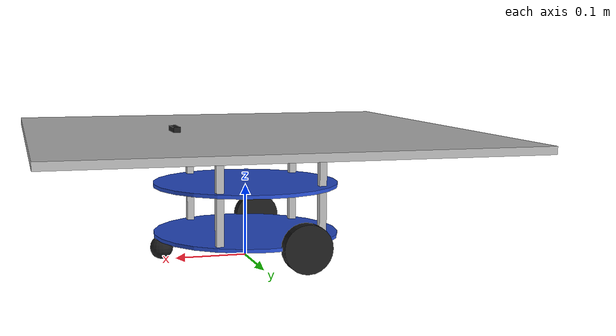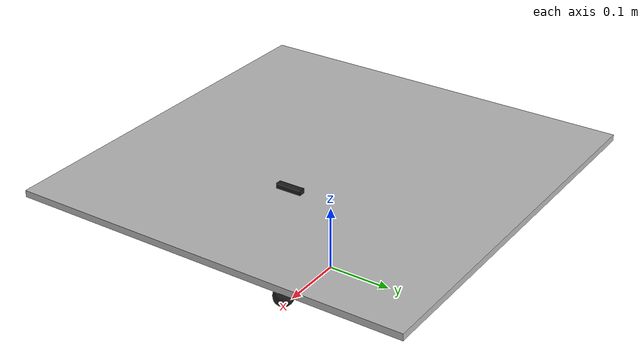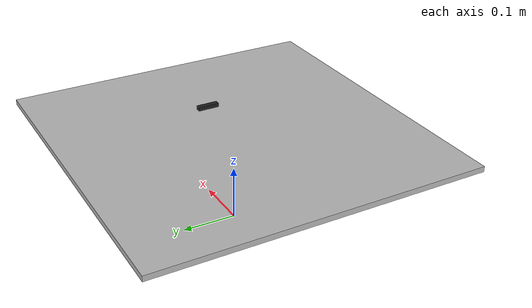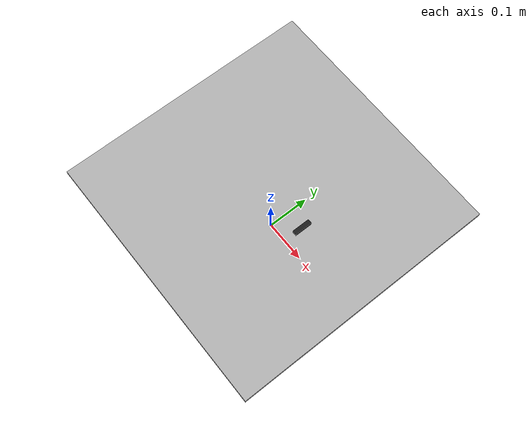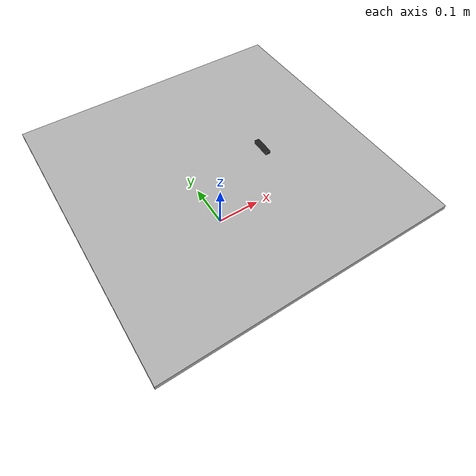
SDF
<sdf version='1.6'>
  <model name='mrobot'>
    <link name='base_footprint'>
      <pose frame=''>0 0 0 0 -0 0</pose>
      <inertial>
        <pose frame=''>0.013545 0 0.078721 0 -0 0</pose>
        <mass>0.818</mass>
        <inertia>
          <ixx>0.0171712</ixx>
          <ixy>7.34289e-22</ixy>
          <ixz>-0.00106581</ixz>
          <iyy>0.0181523</iyy>
          <iyz>2.47856e-21</iyz>
          <izz>0.0178163</izz>
        </inertia>
      </inertial>
      <collision name='base_footprint_fixed_joint_lump__base_link_collision'>
        <pose frame=''>0 0 0.033 0 -0 0</pose>
        <geometry>
          <cylinder>
            <length>0.005</length>
            <radius>0.13</radius>
          </cylinder>
        </geometry>
        <surface>
          <contact>
            <ode/>
          </contact>
          <friction>
            <ode/>
          </friction>
        </surface>
      </collision>
      <collision name='base_footprint_fixed_joint_lump__front_caster_link_collision_1'>
        <pose frame=''>0.12 0 0.017 0 -0 0</pose>
        <geometry>
          <sphere>
            <radius>0.016</radius>
          </sphere>
        </geometry>
        <surface>
          <contact>
            <ode/>
          </contact>
          <friction>
            <ode/>
          </friction>
        </surface>
      </collision>
      <collision name='base_footprint_fixed_joint_lump__plate_1_link_collision_2'>
        <pose frame=''>0 0 0.103 0 -0 0</pose>
        <geometry>
          <cylinder>
            <length>0.005</length>
            <radius>0.13</radius>
          </cylinder>
        </geometry>
        <surface>
          <contact>
            <ode/>
          </contact>
          <friction>
            <ode/>
          </friction>
        </surface>
      </collision>
      <collision name='base_footprint_fixed_joint_lump__plate_2_link_collision_3'>
        <pose frame=''>0 0 0.173 0 -0 0</pose>
        <geometry>
          <box>
            <size>0.6 0.6 .01</size>
          </box>
        </geometry>
        <surface>
          <contact>
            <ode/>
          </contact>
          <friction>
            <ode/>
          </friction>
        </surface>
      </collision>
      <collision name='base_footprint_fixed_joint_lump__camera_link_collision_4'>
        <pose frame=''>0.1 0 0.193 0 -0 0</pose>
        <geometry>
          <box>
            <size>0.01 0.04 0.04</size>
          </box>
        </geometry>
        <surface>
          <contact>
            <ode/>
          </contact>
          <friction>
            <ode/>
          </friction>
        </surface>
      </collision>
      <collision name='base_footprint_fixed_joint_lump__standoff_2in_1_link_collision_5'>
        <pose frame=''>-0.09 -0.07 0.068 0 -0 0</pose>
        <geometry>
          <box>
            <size>0.01 0.01 0.07</size>
          </box>
        </geometry>
      </collision>
      <collision name='base_footprint_fixed_joint_lump__standoff_2in_5_link_collision_6'>
        <pose frame=''>-0.09 -0.07 0.138 0 -0 0</pose>
        <geometry>
          <box>
            <size>0.01 0.01 0.07</size>
          </box>
        </geometry>
      </collision>
      <collision name='base_footprint_fixed_joint_lump__standoff_2in_2_link_collision_7'>
        <pose frame=''>-0.09 0.07 0.068 0 -0 0</pose>
        <geometry>
          <box>
            <size>0.01 0.01 0.07</size>
          </box>
        </geometry>
      </collision>
      <collision name='base_footprint_fixed_joint_lump__standoff_2in_6_link_collision_8'>
        <pose frame=''>-0.09 0.07 0.138 0 -0 0</pose>
        <geometry>
          <box>
            <size>0.01 0.01 0.07</size>
          </box>
        </geometry>
      </collision>
      <collision name='base_footprint_fixed_joint_lump__standoff_2in_3_link_collision_9'>
        <pose frame=''>0.06 -0.1 0.068 0 -0 0</pose>
        <geometry>
          <box>
            <size>0.01 0.01 0.07</size>
          </box>
        </geometry>
      </collision>
      <collision name='base_footprint_fixed_joint_lump__standoff_2in_7_link_collision_10'>
        <pose frame=''>0.06 -0.1 0.138 0 -0 0</pose>
        <geometry>
          <box>
            <size>0.01 0.01 0.07</size>
          </box>
        </geometry>
      </collision>
      <collision name='base_footprint_fixed_joint_lump__standoff_2in_4_link_collision_11'>
        <pose frame=''>0.06 0.1 0.068 0 -0 0</pose>
        <geometry>
          <box>
            <size>0.01 0.01 0.07</size>
          </box>
        </geometry>
      </collision>
      <collision name='base_footprint_fixed_joint_lump__standoff_2in_8_link_collision_12'>
        <pose frame=''>0.06 0.1 0.138 0 -0 0</pose>
        <geometry>
          <box>
            <size>0.01 0.01 0.07</size>
          </box>
        </geometry>
      </collision>
      <visual name='base_footprint_visual'>
        <pose frame=''>0 0 0 0 -0 0</pose>
        <geometry>
          <box>
            <size>0.001 0.001 0.001</size>
          </box>
        </geometry>
      </visual>
      <visual name='base_footprint_fixed_joint_lump__base_link_visual_1'>
        <pose frame=''>0 0 0.033 0 -0 0</pose>
        <geometry>
          <cylinder>
            <length>0.005</length>
            <radius>0.13</radius>
          </cylinder>
        </geometry>
        <material>
          <script>
            <name>Gazebo/Blue</name>
            <uri>file://media/materials/scripts/gazebo.material</uri>
          </script>
        </material>
      </visual>
      <visual name='base_footprint_fixed_joint_lump__front_caster_link_visual_2'>
        <pose frame=''>0.12 0 0.017 0 -0 0</pose>
        <geometry>
          <sphere>
            <radius>0.016</radius>
          </sphere>
        </geometry>
        <material>
          <script>
            <name>Gazebo/Black</name>
            <uri>file://media/materials/scripts/gazebo.material</uri>
          </script>
        </material>
      </visual>
      <visual name='base_footprint_fixed_joint_lump__plate_1_link_visual_3'>
        <pose frame=''>0 0 0.103 0 -0 0</pose>
        <geometry>
          <cylinder>
            <length>0.005</length>
            <radius>0.13</radius>
          </cylinder>
        </geometry>
        <material>
          <script>
            <name>Gazebo/Blue</name>
            <uri>file://media/materials/scripts/gazebo.material</uri>
          </script>
        </material>
      </visual>
      <visual name='base_footprint_fixed_joint_lump__plate_2_link_visual_4'>
        <pose frame=''>0 0 0.173 0 -0 0</pose>
        <geometry>
          <box>
            <size>0.6 0.6 .01</size>
          </box>
        </geometry>
        <material>
          <script>
            <uri>model://my_landing_pad/materials/scripts</uri>
	          <uri>model://my_landing_pad/materials/textures</uri>
            <name>Cube/my_landing_pad</name>
          </script>
        </material>
      </visual>
      <visual name='base_footprint_fixed_joint_lump__camera_link_visual_5'>
        <pose frame=''>0.1 0 0.18 0 -0 0</pose>
        <geometry>
          <box>
            <size>0.01 0.04 0.01</size>
          </box>
        </geometry>
        <material>
          <script>
            <name>Gazebo/Black</name>
            <uri>file://media/materials/scripts/gazebo.material</uri>
          </script>
        </material>
      </visual>
      <visual name='base_footprint_fixed_joint_lump__standoff_2in_1_link_visual_6'>
        <pose frame=''>-0.09 -0.07 0.068 0 -0 0</pose>
        <geometry>
          <box>
            <size>0.01 0.01 0.07</size>
          </box>
        </geometry>
      </visual>
      <visual name='base_footprint_fixed_joint_lump__standoff_2in_5_link_visual_7'>
        <pose frame=''>-0.09 -0.07 0.138 0 -0 0</pose>
        <geometry>
          <box>
            <size>0.01 0.01 0.07</size>
          </box>
        </geometry>
      </visual>
      <visual name='base_footprint_fixed_joint_lump__standoff_2in_2_link_visual_8'>
        <pose frame=''>-0.09 0.07 0.068 0 -0 0</pose>
        <geometry>
          <box>
            <size>0.01 0.01 0.07</size>
          </box>
        </geometry>
      </visual>
      <visual name='base_footprint_fixed_joint_lump__standoff_2in_6_link_visual_9'>
        <pose frame=''>-0.09 0.07 0.138 0 -0 0</pose>
        <geometry>
          <box>
            <size>0.01 0.01 0.07</size>
          </box>
        </geometry>
      </visual>
      <visual name='base_footprint_fixed_joint_lump__standoff_2in_3_link_visual_10'>
        <pose frame=''>0.06 -0.1 0.068 0 -0 0</pose>
        <geometry>
          <box>
            <size>0.01 0.01 0.07</size>
          </box>
        </geometry>
      </visual>
      <visual name='base_footprint_fixed_joint_lump__standoff_2in_7_link_visual_11'>
        <pose frame=''>0.06 -0.1 0.138 0 -0 0</pose>
        <geometry>
          <box>
            <size>0.01 0.01 0.07</size>
          </box>
        </geometry>
      </visual>
      <visual name='base_footprint_fixed_joint_lump__standoff_2in_4_link_visual_12'>
        <pose frame=''>0.06 0.1 0.068 0 -0 0</pose>
        <geometry>
          <box>
            <size>0.01 0.01 0.07</size>
          </box>
        </geometry>
      </visual>
      <visual name='base_footprint_fixed_joint_lump__standoff_2in_8_link_visual_13'>
        <pose frame=''>0.06 0.1 0.138 0 -0 0</pose>
        <geometry>
          <box>
            <size>0.01 0.01 0.07</size>
          </box>
        </geometry>
      </visual>
      <velocity_decay/>
      <velocity_decay/>
      <velocity_decay/>
      <velocity_decay/>
      <velocity_decay/>
      <gravity>1</gravity>
      <velocity_decay/>

      <sensor name='camera_on_car' type='camera'>
        <update_rate>30</update_rate>
        <camera name='head'>
          <pose frame=''>0 0 0 0 -1.57 0</pose>
          <horizontal_fov>1.39626</horizontal_fov>
          <image>
            <width>1280</width>
            <height>720</height>
            <format>R8G8B8</format>
          </image>
          <clip>
            <near>0.02</near>
            <far>300</far>
          </clip>
          <noise>
            <type>gaussian</type>
            <mean>0</mean>
            <stddev>0.007</stddev>
          </noise>
        </camera>
        <plugin name='gazebo_camera' filename='libgazebo_ros_camera.so'>
          <alwaysOn>1</alwaysOn>
          <updateRate>0.0</updateRate>
          <cameraName>/camera_on_car</cameraName>
          <imageTopicName>image_raw_from_car</imageTopicName>
          <cameraInfoTopicName>camera_info_on_car</cameraInfoTopicName>
          <frameName>camera_link</frameName>
          <hackBaseline>0.07</hackBaseline>
          <distortionK1>0.0</distortionK1>
          <distortionK2>0.0</distortionK2>
          <distortionK3>0.0</distortionK3>
          <distortionT1>0.0</distortionT1>
          <distortionT2>0.0</distortionT2>
        </plugin>
        <pose frame=''>0.1 0 0.193 0 -0 0</pose>
      </sensor>
    </link>
    <link name='wheel_left_link'>
      <pose frame=''>-0.05 -0.13 0.033 0 -0 0</pose>
      <inertial>
        <pose frame=''>0 0 0 0 -0 0</pose>
        <mass>0.1</mass>
        <inertia>
          <ixx>2.96333e-05</ixx>
          <ixy>0</ixy>
          <ixz>0</ixz>
          <iyy>2.96333e-05</iyy>
          <iyz>0</iyz>
          <izz>5.445e-05</izz>
        </inertia>
      </inertial>
      <collision name='wheel_left_link_collision'>
        <pose frame=''>0 0 0 1.5708 -0 0</pose>
        <geometry>
          <cylinder>
            <length>0.017</length>
            <radius>0.033</radius>
          </cylinder>
        </geometry>
        <surface>
          <contact>
            <ode/>
          </contact>
          <friction>
            <ode/>
          </friction>
        </surface>
      </collision>
      <visual name='wheel_left_link_visual'>
        <pose frame=''>0 0 0 1.5708 -0 0</pose>
        <geometry>
          <cylinder>
            <length>0.017</length>
            <radius>0.033</radius>
          </cylinder>
        </geometry>
        <material>
          <script>
            <name>Gazebo/Black</name>
            <uri>file://media/materials/scripts/gazebo.material</uri>
          </script>
        </material>
      </visual>
      <gravity>1</gravity>
      <velocity_decay/>
    </link>
    <joint name='base_to_wheel_left_joint' type='revolute'>
      <child>wheel_left_link</child>
      <parent>base_footprint</parent>
      <axis>
        <xyz>1 0 0</xyz>
        <limit>
          <lower>-1e+16</lower>
          <upper>1e+16</upper>
        </limit>
        <dynamics>
          <spring_reference>0</spring_reference>
          <spring_stiffness>0</spring_stiffness>
        </dynamics>
        <use_parent_model_frame>0</use_parent_model_frame>
      </axis>
    </joint>
    <link name='wheel_right_link'>
      <pose frame=''>-0.05 0.13 0.033 0 -0 0</pose>
      <inertial>
        <pose frame=''>0 0 0 0 -0 0</pose>
        <mass>0.1</mass>
        <inertia>
          <ixx>2.96333e-05</ixx>
          <ixy>0</ixy>
          <ixz>0</ixz>
          <iyy>2.96333e-05</iyy>
          <iyz>0</iyz>
          <izz>5.445e-05</izz>
        </inertia>
      </inertial>
      <collision name='wheel_right_link_collision'>
        <pose frame=''>0 0 0 1.5708 -0 0</pose>
        <geometry>
          <cylinder>
            <length>0.017</length>
            <radius>0.033</radius>
          </cylinder>
        </geometry>
        <surface>
          <contact>
            <ode/>
          </contact>
          <friction>
            <ode/>
          </friction>
        </surface>
      </collision>
      <visual name='wheel_right_link_visual'>
        <pose frame=''>0 0 0 1.5708 -0 0</pose>
        <geometry>
          <cylinder>
            <length>0.017</length>
            <radius>0.033</radius>
          </cylinder>
        </geometry>
        <material>
          <script>
            <name>Gazebo/Black</name>
            <uri>file://media/materials/scripts/gazebo.material</uri>
          </script>
        </material>
      </visual>
      <gravity>1</gravity>
      <velocity_decay/>
    </link>
    <joint name='base_to_wheel_right_joint' type='revolute'>
      <child>wheel_right_link</child>
      <parent>base_footprint</parent>
      <axis>
        <xyz>1 0 0</xyz>
        <limit>
          <lower>-1e+16</lower>
          <upper>1e+16</upper>
        </limit>
        <dynamics>
          <spring_reference>0</spring_reference>
          <spring_stiffness>0</spring_stiffness>
        </dynamics>
        <use_parent_model_frame>0</use_parent_model_frame>
      </axis>
    </joint>
    <static>0</static>
    <plugin name='differential_drive_controller' filename='libgazebo_ros_diff_drive.so'>
      <rosDebugLevel>Debug</rosDebugLevel>
      <publishWheelTF>1</publishWheelTF>
      <robotNamespace>/</robotNamespace>
      <publishTf>1</publishTf>
      <publishWheelJointState>1</publishWheelJointState>
      <alwaysOn>1</alwaysOn>
      <updateRate>100.0</updateRate>
      <legacyMode>1</legacyMode>
      <leftJoint>base_to_wheel_left_joint</leftJoint>
      <rightJoint>base_to_wheel_right_joint</rightJoint>
      <wheelSeparation>0.26</wheelSeparation>
      <wheelDiameter>0.066</wheelDiameter>
      <broadcastTF>1</broadcastTF>
      <wheelTorque>30</wheelTorque>
      <wheelAcceleration>1.8</wheelAcceleration>
      <commandTopic>cmd_vel</commandTopic>
      <odometryFrame>odom</odometryFrame>
      <odometryTopic>odom</odometryTopic>
      <robotBaseFrame>base_footprint</robotBaseFrame>
    </plugin>
  </model>
</sdf>
